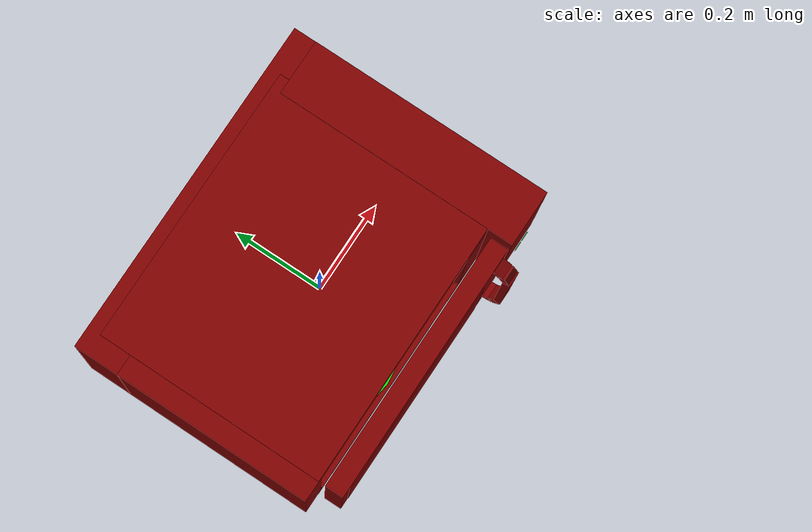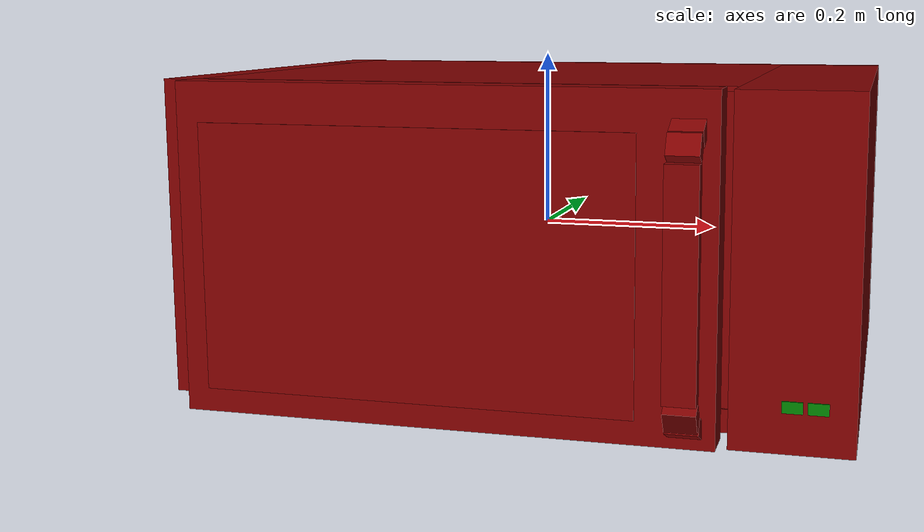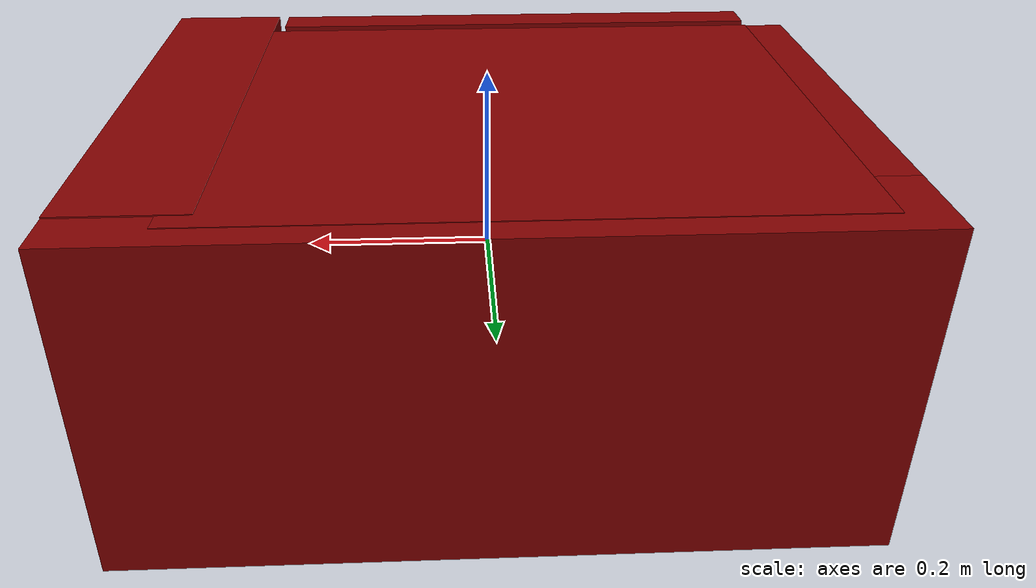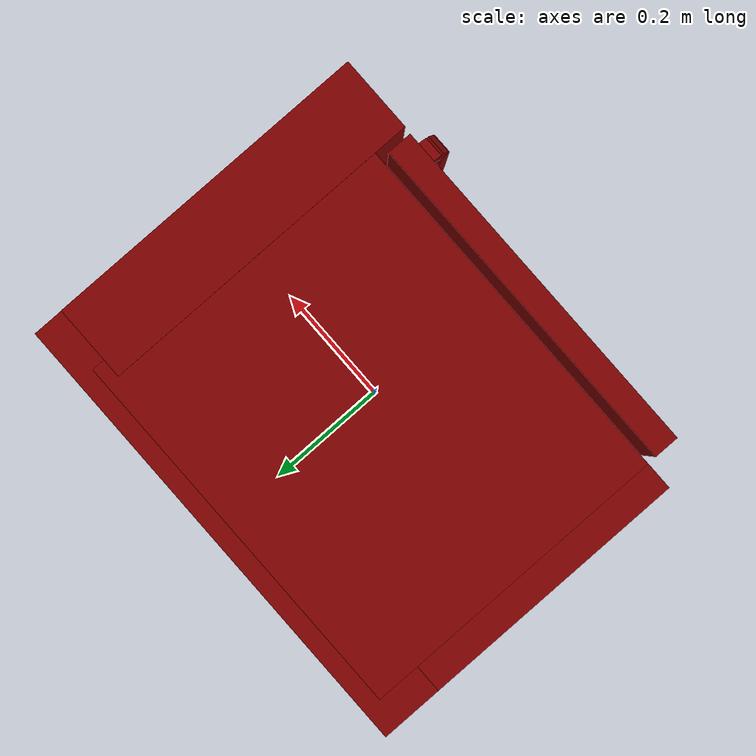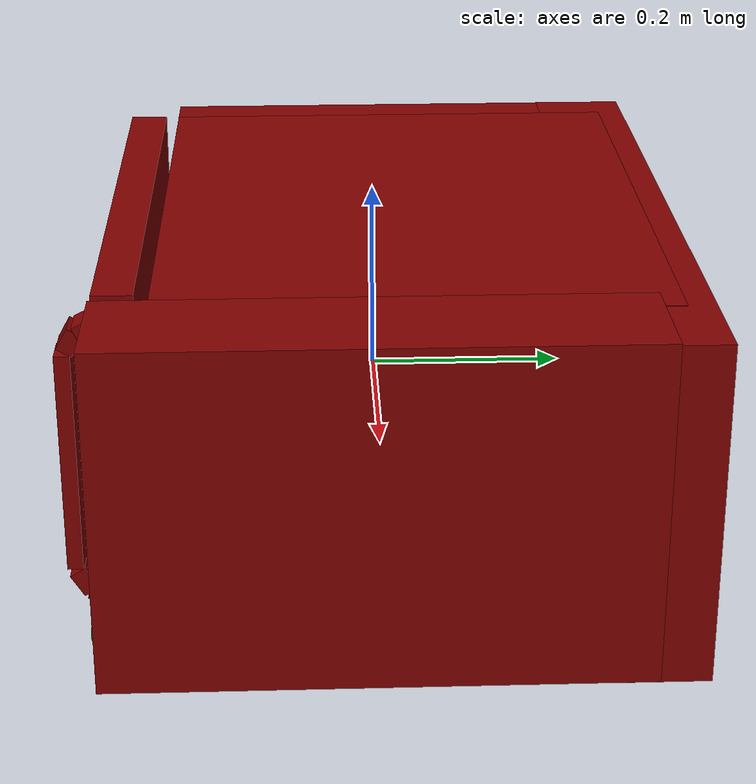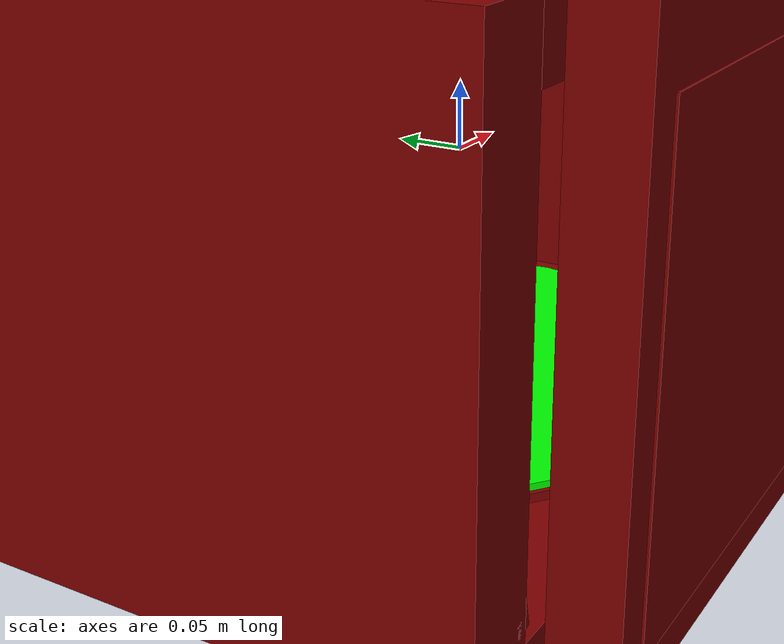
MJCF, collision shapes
<?xml version='1.0' encoding='UTF-8'?>
<mujoco model="model">
  <option timestep="0.002" gravity="0.0 0.0 -9.81"/>
  <compiler angle="radian"/>
  <asset>
    <mesh file="visuals/door.obj" name="door_vis"/>
    <mesh file="visuals/door_Clear.obj" name="door_Clear_vis"/>
    <mesh file="visuals/Body001.obj" name="Body001_vis"/>
    <mesh file="visuals/Disc001.obj" name="Disc001_vis"/>
    <texture file="visuals/T_BC001.png" name="Body001_material" type="2d"/>
    <material name="Body001_material" rgba="1 1 1 1.0" texture="Body001_material" shininess="0.4472135901451111" specular="2"/>
    <texture file="visuals/T_BC001.png" name="door_material" type="2d"/>
    <material name="door_material" rgba="1 1 1 1.0" texture="door_material" shininess="0.4472135901451111" specular="1"/>
    <texture file="visuals/T_BC001.png" name="door_Clear_material" type="2d"/>
    <material name="door_Clear_material" rgba="1 1 1 0.5048109889030457" texture="door_Clear_material" shininess="0.4472135901451111" specular="0.3103448502657381"/>
    <texture file="visuals/T_BC001.png" name="Disc001_material" type="2d"/>
    <material name="Disc001_material" rgba="1 1 1 1.0" texture="Disc001_material" shininess="0.4472135901451111" specular="2"/>
  </asset>
  <default>
    <default class="visual">
      <geom conaffinity="0" contype="0" group="1" type="mesh"/>
    </default>
    <default class="collision">
      <geom group="0" rgba="0.5 0 0 0.5"/>
    </default>
    <default class="spawn">
      <geom group="0" rgba="1 1 1 0.5" contype="0" conaffinity="0"/>
      <site group="0" rgba="1 1 1 0.5"/>
    </default>
    <default class="region">
      <geom group="1" conaffinity="0" contype="0" rgba="0 1 0 0"/>
    </default>
  </default>
  <worldbody>
    <body>
      <body name="object">
        <geom class="collision" type="box" pos="0.3164972960948944 -0.2802940309047699 -0.12607811391353607" size="0.010241329669952393 0.0007558982470072806 0.005968829151242971" quat="1.0 0.0 0.0 0.0" name="stop_button" rgba="0.0 0.5 0 0.5"/>
        <geom class="collision" type="box" pos="0.34159055352211 -0.2802940309047699 -0.12607811391353607" size="0.010241329669952393 0.0007558982470072806 0.005968829151242971" quat="1.0 0.0 0.0 0.0" name="start_button" rgba="0.0 0.5 0 0.5"/>
        <geom class="collision" type="cylinder" pos="-0.06921511143445969 -0.00994056649506092 -0.13687071204185486" size="0.20485711097717285 0.0023620983120054007" quat="1.0 0.0 0.0 0.0" name="tray" rgba="0 1 0 0.5"/>
        <geom mesh="Body001_vis" type="mesh" solimp="0.998 0.998 0.001" solref="0.001 1" friction="0.95 0.3 0.1" class="visual" material="Body001_material"/>
        <geom class="collision" type="box" pos="2.7285954274702817e-05 0.2635954022407532 0.0011802844237536192" size="0.3781292140483856 0.04943030700087547 0.17596949636936188" quat="1.0 0.0 0.0 0.0"/>
        <geom class="collision" type="box" pos="-0.3512175381183624 0.032182496041059494 0.00036416458897292614" size="0.026884332299232483 0.25255149602890015 0.1766960173845291" quat="1.0 0.0 0.0 0.0"/>
        <geom class="collision" type="box" pos="0.22557705640792847 0.0014075521612539887 0.01149606704711914" size="0.040561068803071976 0.22250987589359283 0.1615988165140152" quat="1.0 0.0 0.0 0.0"/>
        <geom class="collision" type="box" pos="-0.023549258708953857 0.03230220079421997 0.1553608775138855" size="0.30923089385032654 0.2524317800998688 0.02253732457756996" quat="1.0 0.0 0.0 0.0"/>
        <geom class="collision" type="box" pos="-0.023549258708953857 0.031887128949165344 -0.16340984404087067" size="0.30923089385032654 0.2528468668460846 0.012498807162046432" quat="1.0 0.0 0.0 0.0"/>
        <geom class="collision" type="box" pos="0.3161711096763611 -0.0067945439368486404 0.0020258172880858183" size="0.06205257773399353 0.2701724171638489 0.1765763908624649" quat="1.0 0.0 0.0 0.0"/>
        <geom class="collision" type="box" pos="-0.3281593322753906 0.032182496041059494 -0.1337205320596695" size="0.005961817689239979 0.25255149602890015 0.010297650471329689" quat="0.9929884076118469 0.0 -0.11821159720420837 0.0"/>
        <geom class="collision" type="box" pos="-0.3220284581184387 -0.00971795991063118 -0.0016971956938505173" size="0.0018734170589596033 0.15138579905033112 0.11209989339113235" quat="1.0 0.0 0.0 0.0"/>
        <geom class="collision" type="cylinder" pos="-0.31856903433799744 -0.0091579994186759 -0.00046560727059841156" size="0.08857061713933945 0.0050264447927474976" quat="0.7071068286895752 -0.0 0.7071067690849304 0.0"/>
        <body name="door">
          <joint axis="0.0 0.0 1.0" pos="-0.35146740078926086 -0.2523244321346283 0.0018484331667423248" limited="true" name="microjoint" range="-1.5707963267948966 0.0" type="hinge" damping="1" frictionloss="1" armature=".01" stiffness="0.05"/>
          <geom mesh="door_vis" type="mesh" solimp="0.998 0.998 0.001" solref="0.001 1" friction="0.95 0.3 0.1" class="visual" material="door_material"/>
          <geom class="collision" type="box" pos="0.21148483455181122 -0.2797687351703644 0.13767574727535248" size="0.016986919566988945 0.014630443416535854 0.009119168855249882" quat="7.978623557391984e-07 4.85544262573967e-07 0.21992571651935577 -0.9755166172981262"/>
          <geom class="collision" type="box" pos="0.21101222932338715 -0.2994822859764099 0.12433207780122757" size="0.016650613397359848 0.0119004612788558 0.008664303459227085" quat="9.783087051573602e-08 -6.861492920506862e-07 -0.5084688067436218 0.8610804080963135"/>
          <geom class="collision" type="box" pos="0.2113383412361145 -0.2798353135585785 -0.15469995141029358" size="0.017133422195911407 0.014630443416535854 0.009119168855249882" quat="0.9755166172981262 -0.21992571651935577 4.951577352585446e-07 7.552214924544387e-07"/>
          <geom class="collision" type="box" pos="0.21127381920814514 -0.29930445551872253 -0.13852006196975708" size="0.016765717417001724 0.01325072068721056 0.008664301596581936" quat="0.8741090893745422 -0.4857296347618103 8.203319339372683e-07 -4.0377685195380764e-08"/>
          <geom class="collision" type="box" pos="-0.045261554419994354 -0.25515180826187134 9.650591528043151e-05" size="0.2872658669948578 0.02029813453555107 0.17842599749565125" quat="1.9470718370939721e-07 -0.0 -1.0 -0.0" name="door_main"/>
          <geom class="collision" type="box" pos="0.21118232607841492 -0.30769121646881104 -0.006335044279694557" size="0.01705612614750862 0.008050421252846718 0.11683236807584763" quat="1.0 0.0 0.0 0.0" name="door_handle_main"/>
          <geom class="collision" type="box" pos="-0.07358434796333313 -0.2697499692440033 -0.008713161572813988" size="0.23405925929546356 0.007306481711566448 0.14399993419647217" quat="1.9470718370939721e-07 -0.0 -1.0 -0.0"/>
          <body name="door_Clear">
            <geom mesh="door_Clear_vis" type="mesh" solimp="0.998 0.998 0.001" solref="0.001 1" friction="0.95 0.3 0.1" class="visual" material="door_Clear_material"/>
            <geom class="collision" type="box" pos="-0.07358434796333313 -0.2697499692440033 -0.008713161572813988" size="0.23405925929546356 0.007306481711566448 0.14399993419647217" quat="1.9470718370939721e-07 -0.0 -1.0 -0.0"/>
          </body>
        </body>
        <body name="Disc001">
          <joint axis="0.0 0.0 -1.0" pos="-0.0691726878285408 -0.00961108598858118 -0.1418847292661667" limited="false" name="Disc001_joint" range="0 360" type="hinge" damping="1" frictionloss="1" armature=".01" stiffness="0.05"/>
          <geom mesh="Disc001_vis" type="mesh" solimp="0.998 0.998 0.001" solref="0.001 1" friction="0.95 0.3 0.1" class="visual" material="Disc001_material"/>
          <geom class="collision" type="cylinder" pos="-0.06921511143445969 -0.00994056649506092 -0.14436675608158112" size="0.20485711097717285 0.0030649832915514708" quat="1.0 0.0 0.0 0.0"/>
        </body>
        <geom class="region" name="reg_int" type="box" pos="-0.06591623276472092 -0.003240615129470825 -0.0044760555028915405" size="0.241888811647892 0.21215559339523316 0.13103267347812653"/>
        <geom class="region" name="reg_main" type="box" pos="-7.450580596923828e-09 0.018477916717529297 0.0" size="0.3807491192817688 0.29791991209983826 0.17982947623729706"/>
      <geom class="region" name="reg_tray" type="cylinder" pos="-0.06921511143445969 -0.00994056649506092 -0.003975997877307236" size="0.20485711097717285 0.12953261585254222"/></body>
    </body>
  </worldbody>
  <actuator>
    <motor name="microjoint_actuator" joint="microjoint" gear="10"/>
    <motor name="Disc001_joint_actuator" joint="Disc001_joint" gear="10"/>
  </actuator>
</mujoco>
